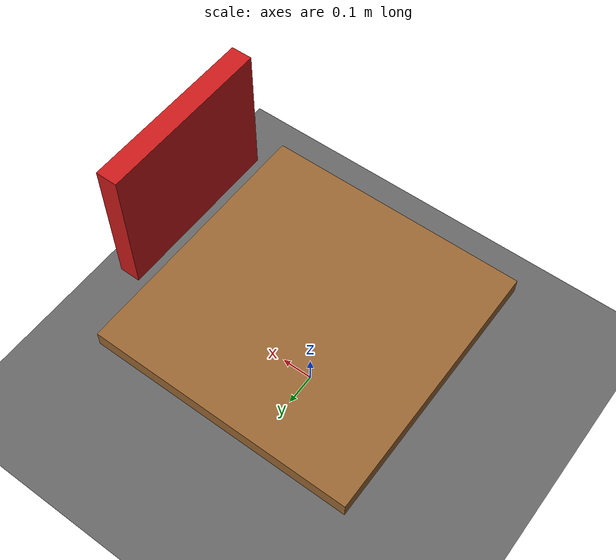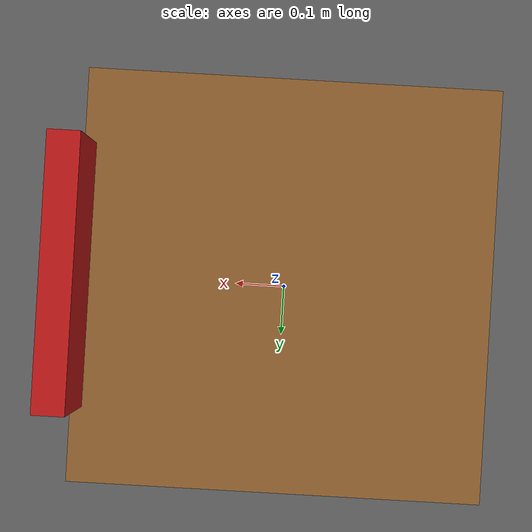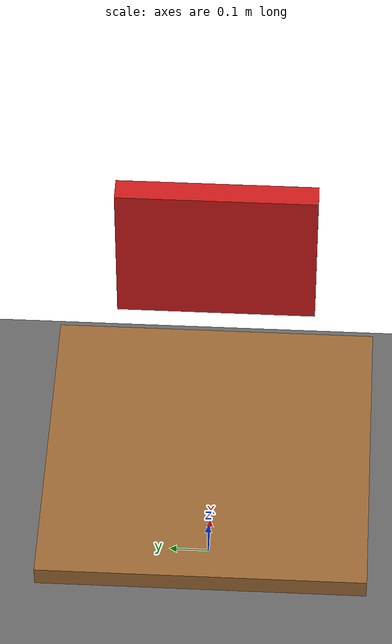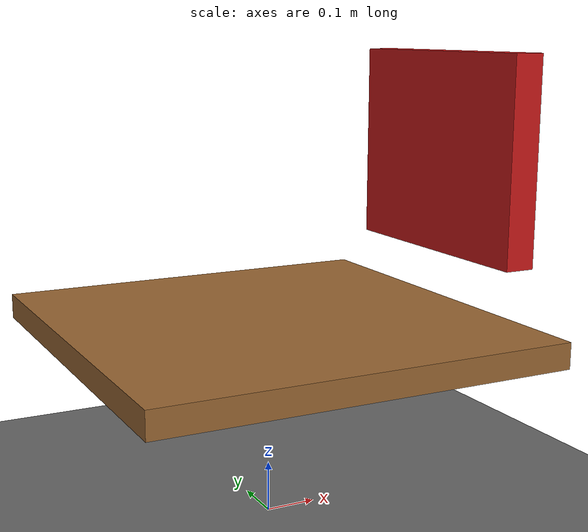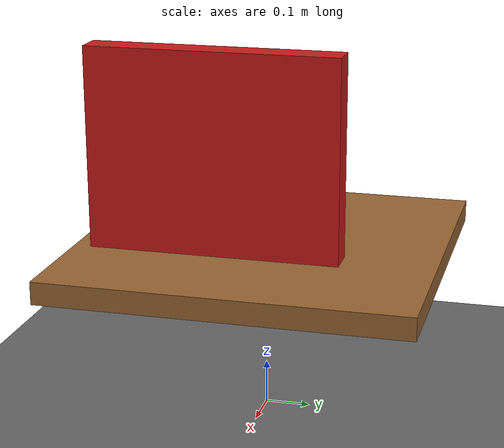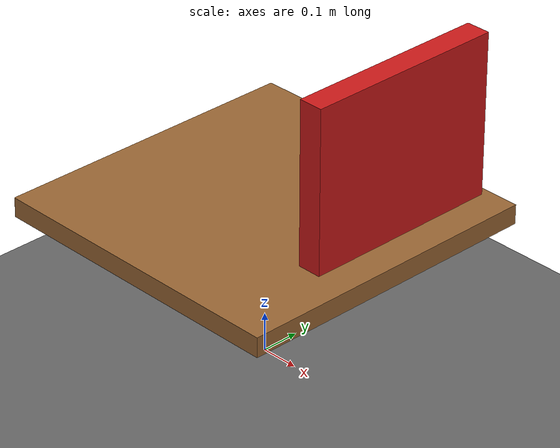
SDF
<?xml version="1.0" ?>
<sdf version="1.7">
  <world name="panda_table">

    <light name="sun" type="directional">
      <cast_shadows>1</cast_shadows>
      <pose>0 0 10 0 0 0</pose>
      <diffuse>0.8 0.8 0.8 1</diffuse>
      <specular>0.2 0.2 0.2 1</specular>
      <direction>-0.5 0.1 -0.9</direction>
    </light>

    <!-- Ground plane -->
    <model name="ground_plane">
      <static>true</static>
      <link name="link">
        <collision name="surface">
          <geometry>
            <plane><normal>0 0 1</normal><size>20 20</size></plane>
          </geometry>
        </collision>
        <visual name="visual">
          <geometry>
            <plane><normal>0 0 1</normal><size>20 20</size></plane>
          </geometry>
          <material>
            <ambient>0.4 0.4 0.4 1</ambient>
            <diffuse>0.4 0.4 0.4 1</diffuse>
          </material>
        </visual>
      </link>
    </model>

    <!-- Table the robot sits on -->
    <model name="table">
      <static>true</static>
      <pose>0 0 0.375 0 0 0</pose>
      <link name="table_top">
        <collision name="collision">
          <geometry>
            <box><size>0.8 0.8 0.05</size></box>
          </geometry>
        </collision>
        <visual name="visual">
          <geometry>
            <box><size>0.8 0.8 0.05</size></box>
          </geometry>
          <material>
            <ambient>0.6 0.4 0.2 1</ambient>
            <diffuse>0.6 0.4 0.2 1</diffuse>
          </material>
        </visual>
      </link>
    </model>

    <!-- Collision obstacle — thin wall in front of the arm (world z=0.5–0.9) -->
    <model name="obstacle">
      <static>true</static>
      <pose>0.4 0.0 0.7 0 0 0</pose>
      <link name="link">
        <collision name="collision">
          <geometry>
            <box><size>0.06 0.5 0.4</size></box>
          </geometry>
        </collision>
        <visual name="visual">
          <geometry>
            <box><size>0.06 0.5 0.4</size></box>
          </geometry>
          <material>
            <ambient>0.8 0.1 0.1 1</ambient>
            <diffuse>0.8 0.1 0.1 1</diffuse>
          </material>
        </visual>
      </link>
    </model>

  </world>
</sdf>
